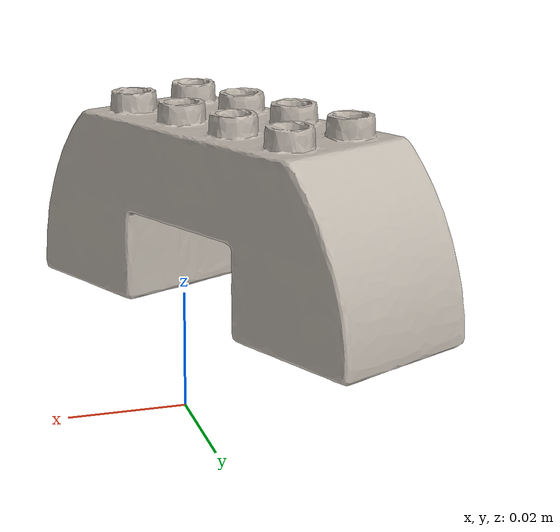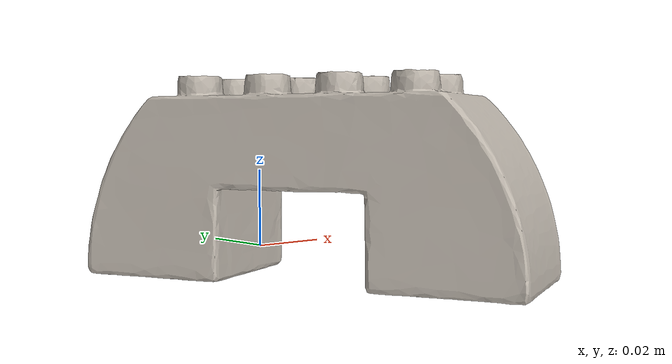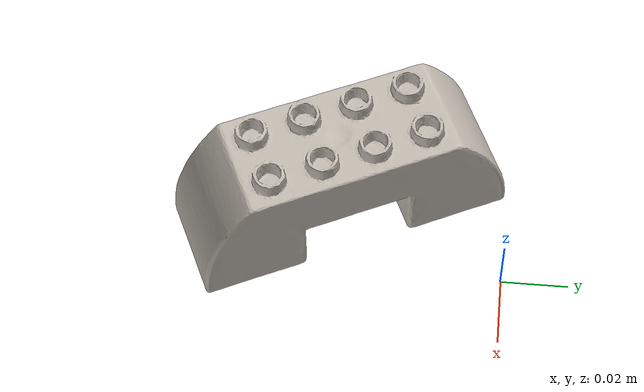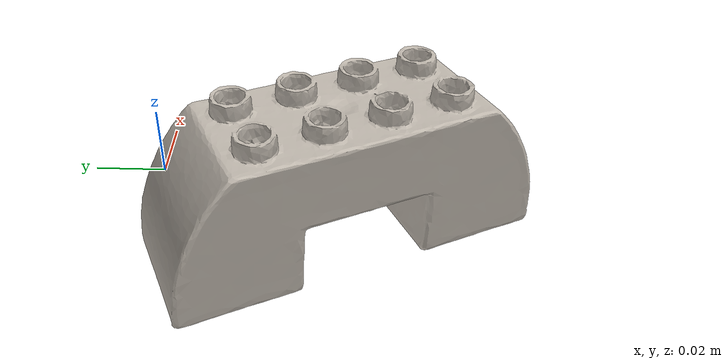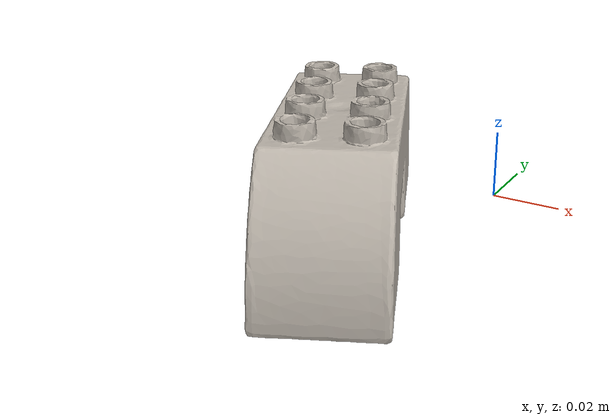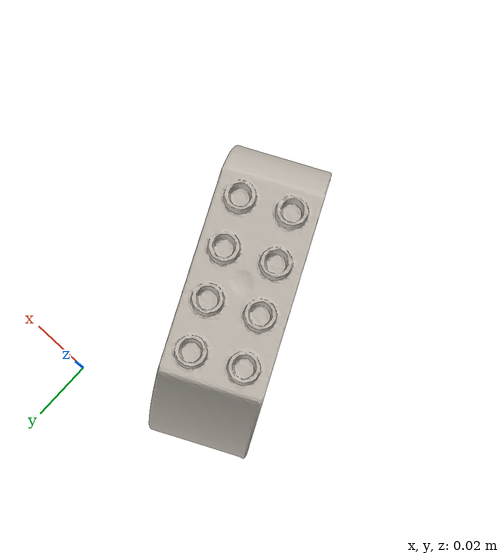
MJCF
<mujoco model="lego_e">
  <compiler angle="radian" meshdir="assets" texturedir="assets"/>
    <default>
        <default class="ycb_col">
            <geom contype="1" class="ycb_col" conaffinity="1" group="3" rgba=".4 .5 .6 1"/>
        </default>
        <default class="ycb_viz">
            <geom contype="0" class="ycb_col" conaffinity="0" type="mesh" mass="0"/>
        </default>
    </default>
  <asset>
    <texture type="2d" name="e_lego_duplo_tex" file="texture_map.png"/>
    <material name="e_lego_duplo_mat" texture="e_lego_duplo_tex" specular="0.5" shininess="0.5"/>
    <mesh file="textured.obj" name="e_lego_duplo"/>
    <mesh file="textured_collision_0.obj" name="e_lego_duplo_collision_0"/>
    <mesh file="textured_collision_1.obj" name="e_lego_duplo_collision_1"/>
    <mesh file="textured_collision_2.obj" name="e_lego_duplo_collision_2"/>
    <mesh file="textured_collision_3.obj" name="e_lego_duplo_collision_3"/>
    <mesh file="textured_collision_4.obj" name="e_lego_duplo_collision_4"/>
    <mesh file="textured_collision_5.obj" name="e_lego_duplo_collision_5"/>
    <mesh file="textured_collision_6.obj" name="e_lego_duplo_collision_6"/>
    <mesh file="textured_collision_7.obj" name="e_lego_duplo_collision_7"/>
    <mesh file="textured_collision_8.obj" name="e_lego_duplo_collision_8"/>
    <mesh file="textured_collision_9.obj" name="e_lego_duplo_collision_9"/>
    <mesh file="textured_collision_10.obj" name="e_lego_duplo_collision_10"/>
    <mesh file="textured_collision_11.obj" name="e_lego_duplo_collision_11"/>
    <mesh file="textured_collision_12.obj" name="e_lego_duplo_collision_12"/>
    <mesh file="textured_collision_13.obj" name="e_lego_duplo_collision_13"/>
    <mesh file="textured_collision_14.obj" name="e_lego_duplo_collision_14"/>
    <mesh file="textured_collision_15.obj" name="e_lego_duplo_collision_15"/>
    <mesh file="textured_collision_16.obj" name="e_lego_duplo_collision_16"/>
    <mesh file="textured_collision_17.obj" name="e_lego_duplo_collision_17"/>
    <mesh file="textured_collision_18.obj" name="e_lego_duplo_collision_18"/>
    <mesh file="textured_collision_19.obj" name="e_lego_duplo_collision_19"/>
    <mesh file="textured_collision_20.obj" name="e_lego_duplo_collision_20"/>
    <mesh file="textured_collision_21.obj" name="e_lego_duplo_collision_21"/>
    <mesh file="textured_collision_22.obj" name="e_lego_duplo_collision_22"/>
    <mesh file="textured_collision_23.obj" name="e_lego_duplo_collision_23"/>
    <mesh file="textured_collision_24.obj" name="e_lego_duplo_collision_24"/>
    <mesh file="textured_collision_25.obj" name="e_lego_duplo_collision_25"/>
    <mesh file="textured_collision_26.obj" name="e_lego_duplo_collision_26"/>
    <mesh file="textured_collision_27.obj" name="e_lego_duplo_collision_27"/>
    <mesh file="textured_collision_28.obj" name="e_lego_duplo_collision_28"/>
    <mesh file="textured_collision_29.obj" name="e_lego_duplo_collision_29"/>
    <mesh file="textured_collision_30.obj" name="e_lego_duplo_collision_30"/>
    <mesh file="textured_collision_31.obj" name="e_lego_duplo_collision_31"/>
    <mesh file="textured_collision_32.obj" name="e_lego_duplo_collision_32"/>
    <mesh file="textured_collision_33.obj" name="e_lego_duplo_collision_33"/>
    <mesh file="textured_collision_34.obj" name="e_lego_duplo_collision_34"/>
    <mesh file="textured_collision_35.obj" name="e_lego_duplo_collision_35"/>
    <mesh file="textured_collision_36.obj" name="e_lego_duplo_collision_36"/>
    <mesh file="textured_collision_37.obj" name="e_lego_duplo_collision_37"/>
    <mesh file="textured_collision_38.obj" name="e_lego_duplo_collision_38"/>
    <mesh file="textured_collision_39.obj" name="e_lego_duplo_collision_39"/>
    <mesh file="textured_collision_40.obj" name="e_lego_duplo_collision_40"/>
    <mesh file="textured_collision_41.obj" name="e_lego_duplo_collision_41"/>
    <mesh file="textured_collision_42.obj" name="e_lego_duplo_collision_42"/>
    <mesh file="textured_collision_43.obj" name="e_lego_duplo_collision_43"/>
    <mesh file="textured_collision_44.obj" name="e_lego_duplo_collision_44"/>
    <mesh file="textured_collision_45.obj" name="e_lego_duplo_collision_45"/>
    <mesh file="textured_collision_46.obj" name="e_lego_duplo_collision_46"/>
    <mesh file="textured_collision_47.obj" name="e_lego_duplo_collision_47"/>
    <mesh file="textured_collision_48.obj" name="e_lego_duplo_collision_48"/>
    <mesh file="textured_collision_49.obj" name="e_lego_duplo_collision_49"/>
    <mesh file="textured_collision_50.obj" name="e_lego_duplo_collision_50"/>
    <mesh file="textured_collision_51.obj" name="e_lego_duplo_collision_51"/>
    <mesh file="textured_collision_52.obj" name="e_lego_duplo_collision_52"/>
    <mesh file="textured_collision_53.obj" name="e_lego_duplo_collision_53"/>
    <mesh file="textured_collision_54.obj" name="e_lego_duplo_collision_54"/>
    <mesh file="textured_collision_55.obj" name="e_lego_duplo_collision_55"/>
    <mesh file="textured_collision_56.obj" name="e_lego_duplo_collision_56"/>
    <mesh file="textured_collision_57.obj" name="e_lego_duplo_collision_57"/>
    <mesh file="textured_collision_58.obj" name="e_lego_duplo_collision_58"/>
    <mesh file="textured_collision_59.obj" name="e_lego_duplo_collision_59"/>
    <mesh file="textured_collision_60.obj" name="e_lego_duplo_collision_60"/>
    <mesh file="textured_collision_61.obj" name="e_lego_duplo_collision_61"/>
  </asset>
  <worldbody>
      <geom material="e_lego_duplo_mat" mesh="e_lego_duplo" class="ycb_viz"/>
      <geom mesh="e_lego_duplo_collision_0" class="ycb_col" conaffinity="1" condim="4" friction="0.1 0.1 0.1" mass="0.00021751840651759065" rgba="1 1 1 1" solimp="0.99 0.99 0.01" solref=".001 0.1" type="mesh" group="3"/>
      <geom mesh="e_lego_duplo_collision_1" class="ycb_col" conaffinity="1" condim="4" friction="0.1 0.1 0.1" mass="0.002520688396721595" rgba="1 1 1 1" solimp="0.99 0.99 0.01" solref=".001 0.1" type="mesh" group="3"/>
      <geom mesh="e_lego_duplo_collision_2" class="ycb_col" conaffinity="1" condim="4" friction="0.1 0.1 0.1" mass="0.0003087583024443496" rgba="1 1 1 1" solimp="0.99 0.99 0.01" solref=".001 0.1" type="mesh" group="3"/>
      <geom mesh="e_lego_duplo_collision_3" class="ycb_col" conaffinity="1" condim="4" friction="0.1 0.1 0.1" mass="0.0020432953825530935" rgba="1 1 1 1" solimp="0.99 0.99 0.01" solref=".001 0.1" type="mesh" group="3"/>
      <geom mesh="e_lego_duplo_collision_4" class="ycb_col" conaffinity="1" condim="4" friction="0.1 0.1 0.1" mass="0.00023048892151321116" rgba="1 1 1 1" solimp="0.99 0.99 0.01" solref=".001 0.1" type="mesh" group="3"/>
      <geom mesh="e_lego_duplo_collision_5" class="ycb_col" conaffinity="1" condim="4" friction="0.1 0.1 0.1" mass="0.00011684945512168492" rgba="1 1 1 1" solimp="0.99 0.99 0.01" solref=".001 0.1" type="mesh" group="3"/>
      <geom mesh="e_lego_duplo_collision_6" class="ycb_col" conaffinity="1" condim="4" friction="0.1 0.1 0.1" mass="0.00031544411967965243" rgba="1 1 1 1" solimp="0.99 0.99 0.01" solref=".001 0.1" type="mesh" group="3"/>
      <geom mesh="e_lego_duplo_collision_7" class="ycb_col" conaffinity="1" condim="4" friction="0.1 0.1 0.1" mass="0.0005452156203518191" rgba="1 1 1 1" solimp="0.99 0.99 0.01" solref=".001 0.1" type="mesh" group="3"/>
      <geom mesh="e_lego_duplo_collision_8" class="ycb_col" conaffinity="1" condim="4" friction="0.1 0.1 0.1" mass="0.00019248025357137825" rgba="1 1 1 1" solimp="0.99 0.99 0.01" solref=".001 0.1" type="mesh" group="3"/>
      <geom mesh="e_lego_duplo_collision_9" class="ycb_col" conaffinity="1" condim="4" friction="0.1 0.1 0.1" mass="0.0011880878979253018" rgba="1 1 1 1" solimp="0.99 0.99 0.01" solref=".001 0.1" type="mesh" group="3"/>
      <geom mesh="e_lego_duplo_collision_10" class="ycb_col" conaffinity="1" condim="4" friction="0.1 0.1 0.1" mass="0.00012596882793115165" rgba="1 1 1 1" solimp="0.99 0.99 0.01" solref=".001 0.1" type="mesh" group="3"/>
      <geom mesh="e_lego_duplo_collision_11" class="ycb_col" conaffinity="1" condim="4" friction="0.1 0.1 0.1" mass="0.0003712174629880894" rgba="1 1 1 1" solimp="0.99 0.99 0.01" solref=".001 0.1" type="mesh" group="3"/>
      <geom mesh="e_lego_duplo_collision_12" class="ycb_col" conaffinity="1" condim="4" friction="0.1 0.1 0.1" mass="0.0002887681510044752" rgba="1 1 1 1" solimp="0.99 0.99 0.01" solref=".001 0.1" type="mesh" group="3"/>
      <geom mesh="e_lego_duplo_collision_13" class="ycb_col" conaffinity="1" condim="4" friction="0.1 0.1 0.1" mass="3.8908218445728195e-05" rgba="1 1 1 1" solimp="0.99 0.99 0.01" solref=".001 0.1" type="mesh" group="3"/>
      <geom mesh="e_lego_duplo_collision_14" class="ycb_col" conaffinity="1" condim="4" friction="0.1 0.1 0.1" mass="0.0002680484509646376" rgba="1 1 1 1" solimp="0.99 0.99 0.01" solref=".001 0.1" type="mesh" group="3"/>
      <geom mesh="e_lego_duplo_collision_15" class="ycb_col" conaffinity="1" condim="4" friction="0.1 0.1 0.1" mass="0.00014159797652916708" rgba="1 1 1 1" solimp="0.99 0.99 0.01" solref=".001 0.1" type="mesh" group="3"/>
      <geom mesh="e_lego_duplo_collision_16" class="ycb_col" conaffinity="1" condim="4" friction="0.1 0.1 0.1" mass="0.00020761453826707515" rgba="1 1 1 1" solimp="0.99 0.99 0.01" solref=".001 0.1" type="mesh" group="3"/>
      <geom mesh="e_lego_duplo_collision_17" class="ycb_col" conaffinity="1" condim="4" friction="0.1 0.1 0.1" mass="0.00015074930174232" rgba="1 1 1 1" solimp="0.99 0.99 0.01" solref=".001 0.1" type="mesh" group="3"/>
      <geom mesh="e_lego_duplo_collision_18" class="ycb_col" conaffinity="1" condim="4" friction="0.1 0.1 0.1" mass="0.00015715920748762992" rgba="1 1 1 1" solimp="0.99 0.99 0.01" solref=".001 0.1" type="mesh" group="3"/>
      <geom mesh="e_lego_duplo_collision_19" class="ycb_col" conaffinity="1" condim="4" friction="0.1 0.1 0.1" mass="0.0001463576226176807" rgba="1 1 1 1" solimp="0.99 0.99 0.01" solref=".001 0.1" type="mesh" group="3"/>
      <geom mesh="e_lego_duplo_collision_20" class="ycb_col" conaffinity="1" condim="4" friction="0.1 0.1 0.1" mass="0.000246001487835436" rgba="1 1 1 1" solimp="0.99 0.99 0.01" solref=".001 0.1" type="mesh" group="3"/>
      <geom mesh="e_lego_duplo_collision_21" class="ycb_col" conaffinity="1" condim="4" friction="0.1 0.1 0.1" mass="0.00026230264328118923" rgba="1 1 1 1" solimp="0.99 0.99 0.01" solref=".001 0.1" type="mesh" group="3"/>
      <geom mesh="e_lego_duplo_collision_22" class="ycb_col" conaffinity="1" condim="4" friction="0.1 0.1 0.1" mass="5.217933732513778e-05" rgba="1 1 1 1" solimp="0.99 0.99 0.01" solref=".001 0.1" type="mesh" group="3"/>
      <geom mesh="e_lego_duplo_collision_23" class="ycb_col" conaffinity="1" condim="4" friction="0.1 0.1 0.1" mass="3.275989784630146e-05" rgba="1 1 1 1" solimp="0.99 0.99 0.01" solref=".001 0.1" type="mesh" group="3"/>
      <geom mesh="e_lego_duplo_collision_24" class="ycb_col" conaffinity="1" condim="4" friction="0.1 0.1 0.1" mass="5.698766411384691e-05" rgba="1 1 1 1" solimp="0.99 0.99 0.01" solref=".001 0.1" type="mesh" group="3"/>
      <geom mesh="e_lego_duplo_collision_25" class="ycb_col" conaffinity="1" condim="4" friction="0.1 0.1 0.1" mass="5.452308516323935e-05" rgba="1 1 1 1" solimp="0.99 0.99 0.01" solref=".001 0.1" type="mesh" group="3"/>
      <geom mesh="e_lego_duplo_collision_26" class="ycb_col" conaffinity="1" condim="4" friction="0.1 0.1 0.1" mass="4.1650815001559443e-07" rgba="1 1 1 1" solimp="0.99 0.99 0.01" solref=".001 0.1" type="mesh" group="3"/>
      <geom mesh="e_lego_duplo_collision_27" class="ycb_col" conaffinity="1" condim="4" friction="0.1 0.1 0.1" mass="3.340300832519319e-05" rgba="1 1 1 1" solimp="0.99 0.99 0.01" solref=".001 0.1" type="mesh" group="3"/>
      <geom mesh="e_lego_duplo_collision_28" class="ycb_col" conaffinity="1" condim="4" friction="0.1 0.1 0.1" mass="1.7904367551526487e-05" rgba="1 1 1 1" solimp="0.99 0.99 0.01" solref=".001 0.1" type="mesh" group="3"/>
      <geom mesh="e_lego_duplo_collision_29" class="ycb_col" conaffinity="1" condim="4" friction="0.1 0.1 0.1" mass="5.601962458041676e-05" rgba="1 1 1 1" solimp="0.99 0.99 0.01" solref=".001 0.1" type="mesh" group="3"/>
      <geom mesh="e_lego_duplo_collision_30" class="ycb_col" conaffinity="1" condim="4" friction="0.1 0.1 0.1" mass="8.076019927653498e-05" rgba="1 1 1 1" solimp="0.99 0.99 0.01" solref=".001 0.1" type="mesh" group="3"/>
      <geom mesh="e_lego_duplo_collision_31" class="ycb_col" conaffinity="1" condim="4" friction="0.1 0.1 0.1" mass="0.00011889026331194197" rgba="1 1 1 1" solimp="0.99 0.99 0.01" solref=".001 0.1" type="mesh" group="3"/>
      <geom mesh="e_lego_duplo_collision_32" class="ycb_col" conaffinity="1" condim="4" friction="0.1 0.1 0.1" mass="0.00011817685238529206" rgba="1 1 1 1" solimp="0.99 0.99 0.01" solref=".001 0.1" type="mesh" group="3"/>
      <geom mesh="e_lego_duplo_collision_33" class="ycb_col" conaffinity="1" condim="4" friction="0.1 0.1 0.1" mass="0.000141064898263497" rgba="1 1 1 1" solimp="0.99 0.99 0.01" solref=".001 0.1" type="mesh" group="3"/>
      <geom mesh="e_lego_duplo_collision_34" class="ycb_col" conaffinity="1" condim="4" friction="0.1 0.1 0.1" mass="8.164656489541209e-05" rgba="1 1 1 1" solimp="0.99 0.99 0.01" solref=".001 0.1" type="mesh" group="3"/>
      <geom mesh="e_lego_duplo_collision_35" class="ycb_col" conaffinity="1" condim="4" friction="0.1 0.1 0.1" mass="4.582618957494554e-05" rgba="1 1 1 1" solimp="0.99 0.99 0.01" solref=".001 0.1" type="mesh" group="3"/>
      <geom mesh="e_lego_duplo_collision_36" class="ycb_col" conaffinity="1" condim="4" friction="0.1 0.1 0.1" mass="0.0001427658063709706" rgba="1 1 1 1" solimp="0.99 0.99 0.01" solref=".001 0.1" type="mesh" group="3"/>
      <geom mesh="e_lego_duplo_collision_37" class="ycb_col" conaffinity="1" condim="4" friction="0.1 0.1 0.1" mass="0.00020219857212017714" rgba="1 1 1 1" solimp="0.99 0.99 0.01" solref=".001 0.1" type="mesh" group="3"/>
      <geom mesh="e_lego_duplo_collision_38" class="ycb_col" conaffinity="1" condim="4" friction="0.1 0.1 0.1" mass="4.717769667519968e-05" rgba="1 1 1 1" solimp="0.99 0.99 0.01" solref=".001 0.1" type="mesh" group="3"/>
      <geom mesh="e_lego_duplo_collision_39" class="ycb_col" conaffinity="1" condim="4" friction="0.1 0.1 0.1" mass="4.933227007022117e-05" rgba="1 1 1 1" solimp="0.99 0.99 0.01" solref=".001 0.1" type="mesh" group="3"/>
      <geom mesh="e_lego_duplo_collision_40" class="ycb_col" conaffinity="1" condim="4" friction="0.1 0.1 0.1" mass="5.223870992308083e-05" rgba="1 1 1 1" solimp="0.99 0.99 0.01" solref=".001 0.1" type="mesh" group="3"/>
      <geom mesh="e_lego_duplo_collision_41" class="ycb_col" conaffinity="1" condim="4" friction="0.1 0.1 0.1" mass="9.833762754600173e-05" rgba="1 1 1 1" solimp="0.99 0.99 0.01" solref=".001 0.1" type="mesh" group="3"/>
      <geom mesh="e_lego_duplo_collision_42" class="ycb_col" conaffinity="1" condim="4" friction="0.1 0.1 0.1" mass="2.2933551892116638e-05" rgba="1 1 1 1" solimp="0.99 0.99 0.01" solref=".001 0.1" type="mesh" group="3"/>
      <geom mesh="e_lego_duplo_collision_43" class="ycb_col" conaffinity="1" condim="4" friction="0.1 0.1 0.1" mass="1.4860266402416421e-05" rgba="1 1 1 1" solimp="0.99 0.99 0.01" solref=".001 0.1" type="mesh" group="3"/>
      <geom mesh="e_lego_duplo_collision_44" class="ycb_col" conaffinity="1" condim="4" friction="0.1 0.1 0.1" mass="5.51661696099943e-05" rgba="1 1 1 1" solimp="0.99 0.99 0.01" solref=".001 0.1" type="mesh" group="3"/>
      <geom mesh="e_lego_duplo_collision_45" class="ycb_col" conaffinity="1" condim="4" friction="0.1 0.1 0.1" mass="0.00010368115196098485" rgba="1 1 1 1" solimp="0.99 0.99 0.01" solref=".001 0.1" type="mesh" group="3"/>
      <geom mesh="e_lego_duplo_collision_46" class="ycb_col" conaffinity="1" condim="4" friction="0.1 0.1 0.1" mass="8.913153778903253e-05" rgba="1 1 1 1" solimp="0.99 0.99 0.01" solref=".001 0.1" type="mesh" group="3"/>
      <geom mesh="e_lego_duplo_collision_47" class="ycb_col" conaffinity="1" condim="4" friction="0.1 0.1 0.1" mass="8.87655261957813e-05" rgba="1 1 1 1" solimp="0.99 0.99 0.01" solref=".001 0.1" type="mesh" group="3"/>
      <geom mesh="e_lego_duplo_collision_48" class="ycb_col" conaffinity="1" condim="4" friction="0.1 0.1 0.1" mass="0.00030860715359344007" rgba="1 1 1 1" solimp="0.99 0.99 0.01" solref=".001 0.1" type="mesh" group="3"/>
      <geom mesh="e_lego_duplo_collision_49" class="ycb_col" conaffinity="1" condim="4" friction="0.1 0.1 0.1" mass="4.7766733109900046e-05" rgba="1 1 1 1" solimp="0.99 0.99 0.01" solref=".001 0.1" type="mesh" group="3"/>
      <geom mesh="e_lego_duplo_collision_50" class="ycb_col" conaffinity="1" condim="4" friction="0.1 0.1 0.1" mass="3.937658311801543e-05" rgba="1 1 1 1" solimp="0.99 0.99 0.01" solref=".001 0.1" type="mesh" group="3"/>
      <geom mesh="e_lego_duplo_collision_51" class="ycb_col" conaffinity="1" condim="4" friction="0.1 0.1 0.1" mass="0.0001460872629559902" rgba="1 1 1 1" solimp="0.99 0.99 0.01" solref=".001 0.1" type="mesh" group="3"/>
      <geom mesh="e_lego_duplo_collision_52" class="ycb_col" conaffinity="1" condim="4" friction="0.1 0.1 0.1" mass="7.935833473305354e-05" rgba="1 1 1 1" solimp="0.99 0.99 0.01" solref=".001 0.1" type="mesh" group="3"/>
      <geom mesh="e_lego_duplo_collision_53" class="ycb_col" conaffinity="1" condim="4" friction="0.1 0.1 0.1" mass="8.727065519898708e-05" rgba="1 1 1 1" solimp="0.99 0.99 0.01" solref=".001 0.1" type="mesh" group="3"/>
      <geom mesh="e_lego_duplo_collision_54" class="ycb_col" conaffinity="1" condim="4" friction="0.1 0.1 0.1" mass="0.0002946648303733556" rgba="1 1 1 1" solimp="0.99 0.99 0.01" solref=".001 0.1" type="mesh" group="3"/>
      <geom mesh="e_lego_duplo_collision_55" class="ycb_col" conaffinity="1" condim="4" friction="0.1 0.1 0.1" mass="5.748945518672918e-05" rgba="1 1 1 1" solimp="0.99 0.99 0.01" solref=".001 0.1" type="mesh" group="3"/>
      <geom mesh="e_lego_duplo_collision_56" class="ycb_col" conaffinity="1" condim="4" friction="0.1 0.1 0.1" mass="3.927290812272996e-05" rgba="1 1 1 1" solimp="0.99 0.99 0.01" solref=".001 0.1" type="mesh" group="3"/>
      <geom mesh="e_lego_duplo_collision_57" class="ycb_col" conaffinity="1" condim="4" friction="0.1 0.1 0.1" mass="3.1559345278362224e-05" rgba="1 1 1 1" solimp="0.99 0.99 0.01" solref=".001 0.1" type="mesh" group="3"/>
      <geom mesh="e_lego_duplo_collision_58" class="ycb_col" conaffinity="1" condim="4" friction="0.1 0.1 0.1" mass="2.264786905590939e-05" rgba="1 1 1 1" solimp="0.99 0.99 0.01" solref=".001 0.1" type="mesh" group="3"/>
      <geom mesh="e_lego_duplo_collision_59" class="ycb_col" conaffinity="1" condim="4" friction="0.1 0.1 0.1" mass="4.1637407383859084e-05" rgba="1 1 1 1" solimp="0.99 0.99 0.01" solref=".001 0.1" type="mesh" group="3"/>
      <geom mesh="e_lego_duplo_collision_60" class="ycb_col" conaffinity="1" condim="4" friction="0.1 0.1 0.1" mass="7.13850989077453e-05" rgba="1 1 1 1" solimp="0.99 0.99 0.01" solref=".001 0.1" type="mesh" group="3"/>
      <geom mesh="e_lego_duplo_collision_61" class="ycb_col" conaffinity="1" condim="4" friction="0.1 0.1 0.1" mass="3.220837016838746e-05" rgba="1 1 1 1" solimp="0.99 0.99 0.01" solref=".001 0.1" type="mesh" group="3"/>
  </worldbody>
</mujoco>
